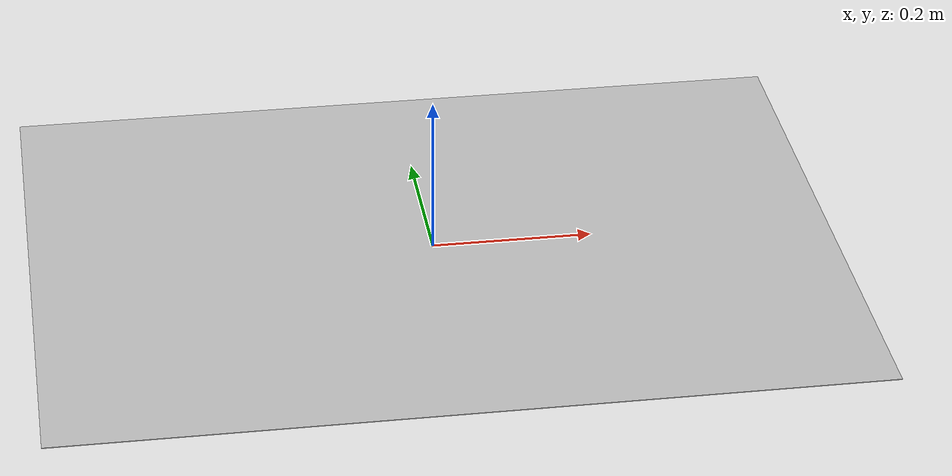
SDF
<?xml version="1.0"?>
<sdf version="1.5">
  <model name="france_flag">
    <static>true</static>
    <link name="rus_flag2_link">
      <pose>0 0 1e-3 0 0 1.5707963267948966</pose>
      <visual name="visual_france_flag">
        <cast_shadows>false</cast_shadows>
        <geometry>
          <box>
            <size>0.75 1 1e-3</size>
          </box>
        </geometry>
        <material>
          <script>
            <uri>model://france_flag/materials/scripts</uri>
            <uri>model://france_flag/materials/textures</uri>
            <name>aruco/france_flag</name>
          </script>
        </material>
      </visual>
    </link>
  </model>
</sdf>
